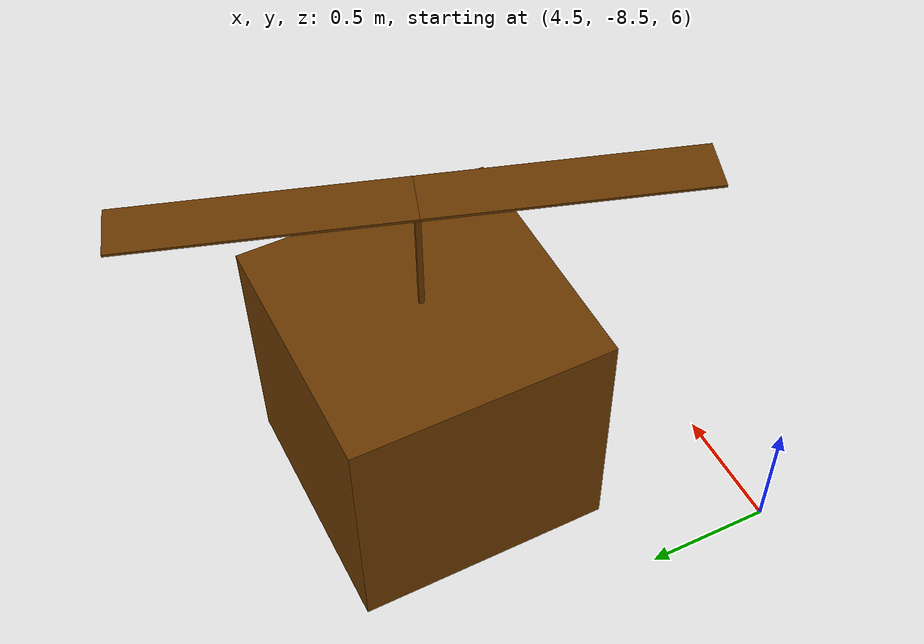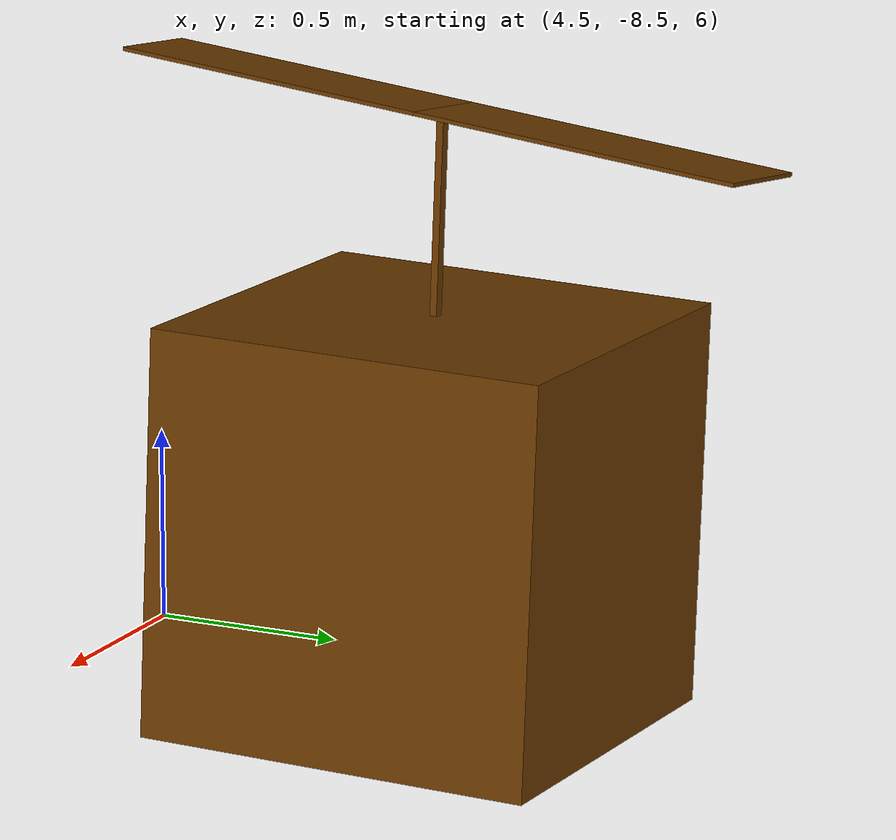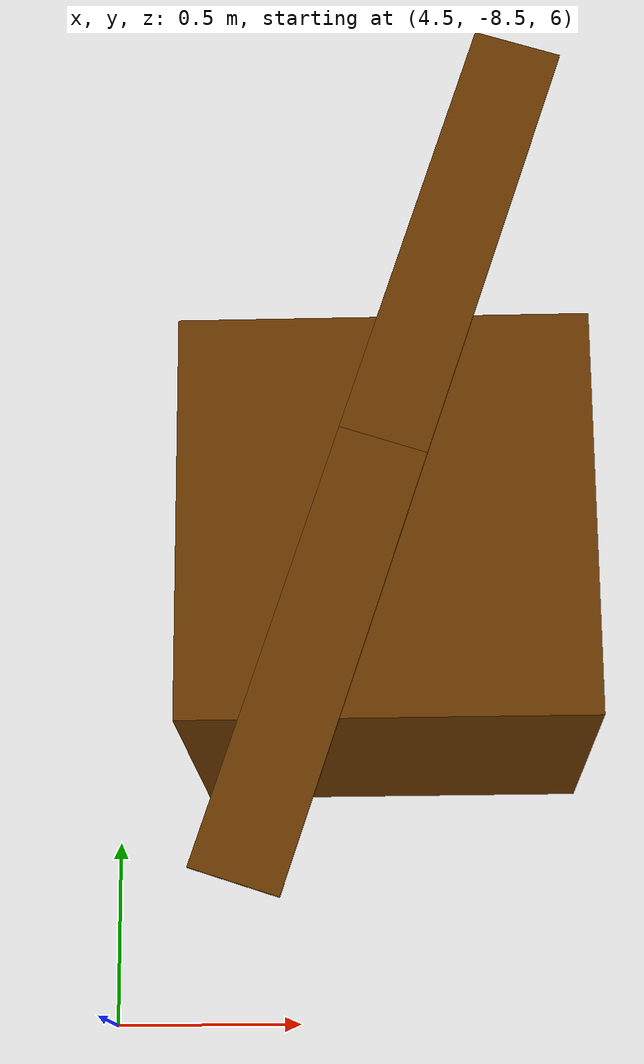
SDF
<sdf version='1.10'>
  <world name='world_0'>
    <gravity>0 0 -9.8066499999999994</gravity>
    <magnetic_field>5.5644999999999998e-06 2.2875799999999999e-05 -4.2388400000000002e-05</magnetic_field>
    <wind>
      <linear_velocity>8 6 8</linear_velocity>
    </wind>
    <physics default='false' type='ode'>
      <max_step_size>0.001</max_step_size>
      <real_time_factor>1</real_time_factor>
      <max_contacts>20</max_contacts>
      <real_time_update_rate>1000</real_time_update_rate>
    </physics>
    <atmosphere type='adiabatic'>
      <temperature>288.14999999999998</temperature>
      <pressure>101325</pressure>
      <temperature_gradient>-0.0064999999999999997</temperature_gradient>
    </atmosphere>
    <scene>
      <ambient>0.400000006 0.400000006 0.400000006 1</ambient>
      <background>0.699999988 0.699999988 0.699999988 1</background>
      <grid>true</grid>
      <origin_visual>true</origin_visual>
      <shadows>true</shadows>
    </scene>
    <model name='model'>
      <pose>5.253062965913216 -7.3896186841568641 6.0919904071799031 -0.025843742395816466 -0.027940678474473176 0.00022416858055128165</pose>
      <link name='body'>
        <pose>0 0 0.5 0 0 0</pose>
        <inertial>
          <pose>0 0 0 0 0 0</pose>
          <inertia>
            <ixx>1.8</ixx>
            <ixy>0</ixy>
            <ixz>0</ixz>
            <iyy>1.8</iyy>
            <iyz>0</iyz>
            <izz>1.8</izz>
          </inertia>
          <mass>10</mass>
        </inertial>
        <collision name='collision'>
          <geometry>
            <box>
              <size>1 1 1</size>
            </box>
          </geometry>
          <surface>
            <friction>
              <ode>
                <mu>0.10000000000000001</mu>
                <mu2>0.10000000000000001</mu2>
              </ode>
            </friction>
            <bounce/>
            <contact/>
          </surface>
        </collision>
        <visual name='visual'>
          <geometry>
            <box>
              <size>1 1 1</size>
            </box>
          </geometry>
          <material>
            <ambient>0.200000003 0.200000003 0.200000003 1</ambient>
            <diffuse>0.421000004 0.224999994 0 1</diffuse>
          </material>
        </visual>
        <enable_wind>false</enable_wind>
      </link>
      <link name='rod_1'>
        <pose>1.7763568394002505e-15 0 1.2500000000000009 2.2462451998038353e-19 1.9635051102998967e-18 2.9159326237381764</pose>
        <inertial>
          <pose>0 0 0 0 0 0</pose>
          <inertia>
            <ixx>0.012</ixx>
            <ixy>0</ixy>
            <ixz>0</ixz>
            <iyy>0.012</iyy>
            <iyz>0</iyz>
            <izz>0.0011999999999999999</izz>
          </inertia>
          <mass>1</mass>
        </inertial>
        <collision name='collision'>
          <geometry>
            <box>
              <size>0.02 0.02 0.5</size>
            </box>
          </geometry>
          <surface>
            <friction>
              <ode/>
            </friction>
            <bounce/>
            <contact/>
          </surface>
        </collision>
        <visual name='visual'>
          <geometry>
            <box>
              <size>0.02 0.02 0.5</size>
            </box>
          </geometry>
          <material>
            <ambient>0.300000012 0.300000012 0.300000012 1</ambient>
            <diffuse>0.421000004 0.224999994 0 1</diffuse>
          </material>
        </visual>
        <enable_wind>false</enable_wind>
      </link>
      <link name='blade_1'>
        <pose>8.8817841970012523e-16 -8.8817841970012523e-16 1.5000000000000027 -1.2237160911602423e-19 3.1396447620076235e-18 2.8190991144840263</pose>
        <inertial>
          <pose>0 0.5 0 0 0 0</pose>
          <inertia>
            <ixx>4.6499999999999999e-05</ixx>
            <ixy>0</ixy>
            <ixz>0</ixz>
            <iyy>5.9999999999999997e-07</iyy>
            <iyz>0</iyz>
            <izz>4.6999999999999997e-05</izz>
          </inertia>
          <mass>0.01</mass>
        </inertial>
        <collision name='collision'>
          <pose>0 0.5 0 0 0 0</pose>
          <geometry>
            <box>
              <size>0.20000000000000001 1 0.01</size>
            </box>
          </geometry>
          <surface>
            <friction>
              <ode/>
            </friction>
            <bounce/>
            <contact/>
          </surface>
        </collision>
        <visual name='visual'>
          <pose>0 0.5 0 0 0 0</pose>
          <geometry>
            <box>
              <size>0.20000000000000001 1 0.01</size>
            </box>
          </geometry>
          <material>
            <ambient>0.5 0.200000003 0.200000003 1</ambient>
            <diffuse>0.421000004 0.224999994 0 1</diffuse>
          </material>
        </visual>
        <enable_wind>false</enable_wind>
      </link>
      <link name='blade_2'>
        <pose>8.8817841970012523e-16 -8.8817841970012523e-16 1.5000000000000027 -1.5613076191989569e-18 1.2733590178999657e-18 -0.32249319269556076</pose>
        <inertial>
          <pose>0 0.5 0 0 0 0</pose>
          <inertia>
            <ixx>4.6499999999999999e-05</ixx>
            <ixy>0</ixy>
            <ixz>0</ixz>
            <iyy>5.9999999999999997e-07</iyy>
            <iyz>0</iyz>
            <izz>4.6999999999999997e-05</izz>
          </inertia>
          <mass>0.01</mass>
        </inertial>
        <collision name='collision'>
          <pose>0 0.5 0 0 0 0</pose>
          <geometry>
            <box>
              <size>0.20000000000000001 1 0.01</size>
            </box>
          </geometry>
          <surface>
            <friction>
              <ode/>
            </friction>
            <bounce/>
            <contact/>
          </surface>
        </collision>
        <visual name='visual'>
          <pose>0 0.5 0 0 0 0</pose>
          <geometry>
            <box>
              <size>0.20000000000000001 1 0.01</size>
            </box>
          </geometry>
          <material>
            <ambient>0.200000003 0.5 0.200000003 1</ambient>
            <diffuse>0.421000004 0.224999994 0 1</diffuse>
          </material>
        </visual>
        <enable_wind>false</enable_wind>
      </link>
      <joint name='rod_1_joint' type='revolute'>
        <parent>body</parent>
        <child>rod_1</child>
        <pose>0 0 0 0 0 0</pose>
        <axis>
          <xyz>0 0 -1</xyz>
          <limit>
            <lower>-10000000000000000</lower>
            <upper>10000000000000000</upper>
            <effort>inf</effort>
            <velocity>inf</velocity>
            <stiffness>100000000</stiffness>
            <dissipation>1</dissipation>
          </limit>
          <dynamics>
            <spring_reference>0</spring_reference>
            <spring_stiffness>0</spring_stiffness>
            <damping>0.0001</damping>
            <friction>0</friction>
          </dynamics>
        </axis>
        <physics>
          <ode>
            <cfm_damping>true</cfm_damping>
          </ode>
        </physics>
      </joint>
      <joint name='blade_1_joint' type='fixed'>
        <parent>rod_1</parent>
        <child>blade_1</child>
        <pose>0 0 0 0 0 0</pose>
      </joint>
      <joint name='blade_2_joint' type='fixed'>
        <parent>rod_1</parent>
        <child>blade_2</child>
        <pose>0 0 2.2204460492503131e-16 0 0 0</pose>
      </joint>
      <plugin name='gz::sim::systems::JointStatePublisher' filename='gz-sim-joint-state-publisher-system'/>
      <plugin name='gz::sim::systems::LiftDrag' filename='gz-sim-lift-drag-system'>
        <a0>0.1</a0>
        <cla>0.1</cla>
        <cda>0.001</cda>
        <cma>0.0</cma>
        <cp>0.0 0.5 0</cp>
        <area>0.2</area>
        <air_density>1.2041</air_density>
        <forward>1 0 0</forward>
        <upward>0 0 1</upward>
        <link_name>blade_1</link_name>
      </plugin>
      <plugin name='gz::sim::systems::LiftDrag' filename='gz-sim-lift-drag-system'>
        <a0>0.1</a0>
        <cla>0.1</cla>
        <cda>0.001</cda>
        <cma>0.0</cma>
        <cp>0.0 0.5 0</cp>
        <area>0.2</area>
        <air_density>1.2041</air_density>
        <forward>1 0 0</forward>
        <upward>0 0 1</upward>
        <link_name>blade_2</link_name>
      </plugin>
      <plugin name='gz::sim::systems::ApplyJointForce' filename='gz-sim-apply-joint-force-system'>
        <joint_name>rod_1_joint</joint_name>
      </plugin>
      <plugin name='gz::sim::systems::LinearBatteryPlugin' filename='gz-sim-linearbatteryplugin-system'>
        <battery_name>linear_battery</battery_name>
        <voltage>4.2</voltage>
        <open_circuit_voltage_constant_coef>4.2</open_circuit_voltage_constant_coef>
        <open_circuit_voltage_linear_coef>-2.0</open_circuit_voltage_linear_coef>
        <initial_charge>2.5</initial_charge>
        <capacity>2.5</capacity>
        <resistance>0.07</resistance>
        <smooth_current_tau>2.0</smooth_current_tau>
        <enable_recharge>true</enable_recharge>
        <charging_time>3.0</charging_time>
        <power_load>2.1</power_load>
        <start_on_motion>true</start_on_motion>
      </plugin>
      <static>false</static>
      <self_collide>false</self_collide>
    </model>
  </world>
</sdf>
